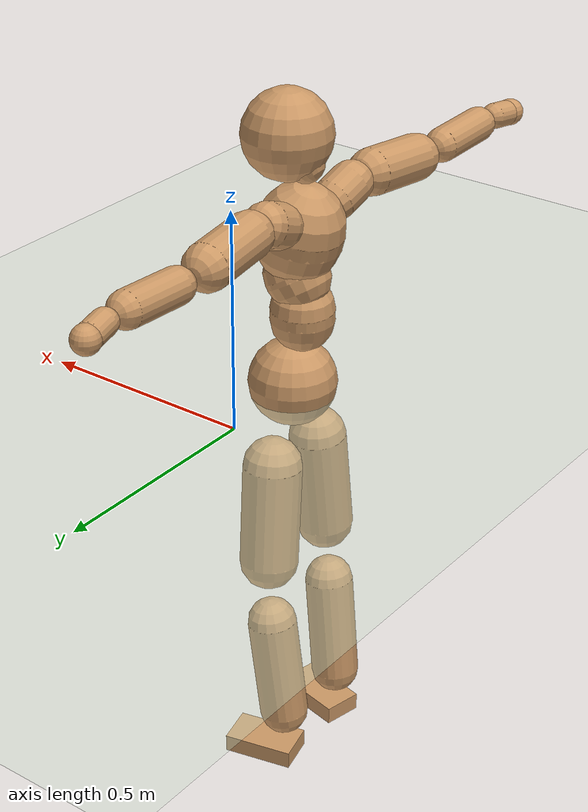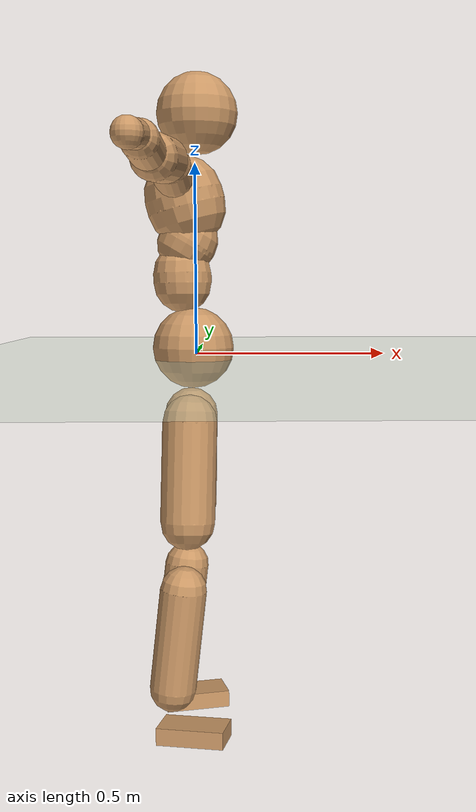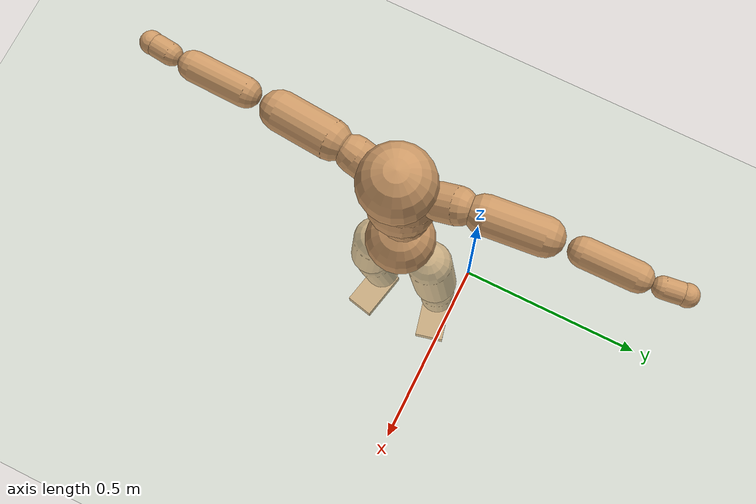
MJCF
<mujoco model="humanoid">
  <compiler coordinate="local" angle="radian"/>
  <default>
    <joint damping="0.0" armature="0.01" stiffness="0.0" limited="true"/>
    <geom conaffinity="1" condim="3" contype="7" margin="0.001" rgba="0.8 0.6 .4 1"/>
  </default>
  <asset>
    <texture type="skybox" builtin="gradient" rgb1=".4 .5 .6" rgb2="0 0 0" width="100" height="100"/>
    <texture builtin="flat" height="1278" mark="cross" markrgb="1 1 1" name="texgeom" random="0.01" rgb1="0.8 0.6 0.4" rgb2="0.8 0.6 0.4" type="cube" width="127"/>
    <texture builtin="checker" height="100" name="texplane" rgb1="0 0 0" rgb2="0.8 0.8 0.8" type="2d" width="100"/>
    <material name="MatPlane" reflectance="0.5" shininess="1" specular="1" texrepeat="60 60" texture="texplane"/>
    <material name="geom" texture="texgeom" texuniform="true"/>
  </asset>
  <worldbody>
    <light cutoff="100" diffuse="1 1 1" dir="-0 0 -1.3" directional="true" exponent="1" pos="0 0 1.3" specular=".1 .1 .1"/>
    <geom conaffinity="1" condim="3" name="floor" pos="0 0 0" rgba="0.8 0.9 0.8 1" size="100 100 .2" type="plane" material="MatPlane"/>
    <body name="Pelvis" pos="0.0006 -0.2084 0.0276">
      <freejoint name="Pelvis"/>
      <geom type="sphere" contype="1" conaffinity="1" density="500" size="0.0998" pos="0.0000 0.0000 0.0000" name="Pelvis"/>
      <body name="L_Hip" pos="-0.0085 0.08 -0.0946">
        <joint name="L_Hip_x" type="hinge" pos="0 0 0" axis="1 0 0" stiffness="800" damping="80" armature="0.02" range="-180.0000 180.0000"/>
        <joint name="L_Hip_y" type="hinge" pos="0 0 0" axis="0 1 0" stiffness="800" damping="80" armature="0.02" range="-180.0000 180.0000"/>
        <joint name="L_Hip_z" type="hinge" pos="0 0 0" axis="0 0 1" stiffness="800" damping="80" armature="0.02" range="-180.0000 180.0000"/>
        <geom type="capsule" contype="1" conaffinity="1" density="500" fromto="-0.0015 0.0067 -0.0794 -0.0062 0.0270 -0.3176" size="0.0671" name="L_Hip"/>
        <body name="L_Knee" pos="-0.0077 0.0337 -0.397">
          <joint name="L_Knee_x" type="hinge" pos="0 0 0" axis="1 0 0" stiffness="800" damping="80" armature="0.02" range="-180.0000 180.0000"/>
          <joint name="L_Knee_y" type="hinge" pos="0 0 0" axis="0 1 0" stiffness="800" damping="80" armature="0.02" range="-180.0000 180.0000"/>
          <joint name="L_Knee_z" type="hinge" pos="0 0 0" axis="0 0 1" stiffness="800" damping="80" armature="0.02" range="-180.0000 180.0000"/>
          <geom type="capsule" contype="1" conaffinity="1" density="500" fromto="-0.0100 -0.0022 -0.0831 -0.0398 -0.0089 -0.3324" size="0.0565" name="L_Knee"/>
          <body name="L_Ankle" pos="-0.0498 -0.0111 -0.4156">
            <joint name="L_Ankle_x" type="hinge" pos="0 0 0" axis="1 0 0" stiffness="800" damping="80" armature="0.02" range="-180.0000 180.0000"/>
            <joint name="L_Ankle_y" type="hinge" pos="0 0 0" axis="0 1 0" stiffness="800" damping="80" armature="0.02" range="-180.0000 180.0000"/>
            <joint name="L_Ankle_z" type="hinge" pos="0 0 0" axis="0 0 1" stiffness="800" damping="80" armature="0.02" range="-180.0000 180.0000"/>
            <geom type="box" contype="1" conaffinity="1" density="500" pos="0.0581 0.0137 -0.0290" size="0.0817 0.0475 0.0212" quat="0.9933 0.0000 0.0000 0.1152" name="L_Ankle"/>
            <body name="L_Toe" pos="0.1161 0.0273 -0.058">
              <joint name="L_Toe_x" type="hinge" pos="0 0 0" axis="1 0 0" stiffness="500" damping="50" armature="0.02" range="-180.0000 180.0000"/>
              <joint name="L_Toe_y" type="hinge" pos="0 0 0" axis="0 1 0" stiffness="500" damping="50" armature="0.02" range="-180.0000 180.0000"/>
              <joint name="L_Toe_z" type="hinge" pos="0 0 0" axis="0 0 1" stiffness="500" damping="50" armature="0.02" range="-180.0000 180.0000"/>
              <geom type="box" contype="1" conaffinity="1" density="500" pos="0.0000 0.0000 0.0293" size="0.0009 0.0023 0.0011" quat="0.9926 0.0000 0.0000 0.1213" name="L_Toe"/>
            </body>
          </body>
        </body>
      </body>
      <body name="R_Hip" pos="-0.0047 -0.0776 -0.0939">
        <joint name="R_Hip_x" type="hinge" pos="0 0 0" axis="1 0 0" stiffness="800" damping="80" armature="0.02" range="-180.0000 180.0000"/>
        <joint name="R_Hip_y" type="hinge" pos="0 0 0" axis="0 1 0" stiffness="800" damping="80" armature="0.02" range="-180.0000 180.0000"/>
        <joint name="R_Hip_z" type="hinge" pos="0 0 0" axis="0 0 1" stiffness="800" damping="80" armature="0.02" range="-180.0000 180.0000"/>
        <geom type="capsule" contype="1" conaffinity="1" density="500" fromto="-0.0020 -0.0082 -0.0810 -0.0082 -0.0327 -0.3239" size="0.0662" name="R_Hip"/>
        <body name="R_Knee" pos="-0.0102 -0.0409 -0.4049">
          <joint name="R_Knee_x" type="hinge" pos="0 0 0" axis="1 0 0" stiffness="800" damping="80" armature="0.02" range="-180.0000 180.0000"/>
          <joint name="R_Knee_y" type="hinge" pos="0 0 0" axis="0 1 0" stiffness="800" damping="80" armature="0.02" range="-180.0000 180.0000"/>
          <joint name="R_Knee_z" type="hinge" pos="0 0 0" axis="0 0 1" stiffness="800" damping="80" armature="0.02" range="-180.0000 180.0000"/>
          <geom type="capsule" contype="1" conaffinity="1" density="500" fromto="-0.0095 0.0029 -0.0835 -0.0379 0.0117 -0.3341" size="0.0567" name="R_Knee"/>
          <body name="R_Ankle" pos="-0.0474 0.0146 -0.4176">
            <joint name="R_Ankle_x" type="hinge" pos="0 0 0" axis="1 0 0" stiffness="800" damping="80" armature="0.02" range="-180.0000 180.0000"/>
            <joint name="R_Ankle_y" type="hinge" pos="0 0 0" axis="0 1 0" stiffness="800" damping="80" armature="0.02" range="-180.0000 180.0000"/>
            <joint name="R_Ankle_z" type="hinge" pos="0 0 0" axis="0 0 1" stiffness="800" damping="80" armature="0.02" range="-180.0000 180.0000"/>
            <geom type="box" contype="1" conaffinity="1" density="500" pos="0.0600 -0.0132 -0.0257" size="0.0836 0.0461 0.0215" quat="0.9942 0.0000 0.0000 -0.1080" name="R_Ankle"/>
            <body name="R_Toe" pos="0.1201 -0.0264 -0.0515">
              <joint name="R_Toe_x" type="hinge" pos="0 0 0" axis="1 0 0" stiffness="500" damping="50" armature="0.02" range="-180.0000 180.0000"/>
              <joint name="R_Toe_y" type="hinge" pos="0 0 0" axis="0 1 0" stiffness="500" damping="50" armature="0.02" range="-180.0000 180.0000"/>
              <joint name="R_Toe_z" type="hinge" pos="0 0 0" axis="0 0 1" stiffness="500" damping="50" armature="0.02" range="-180.0000 180.0000"/>
              <geom type="box" contype="1" conaffinity="1" density="500" pos="0.0000 0.0000 0.0270" size="0.0009 0.0023 0.0011" quat="0.9951 0.0000 0.0000 -0.0984" name="R_Toe"/>
            </body>
          </body>
        </body>
      </body>
      <body name="Torso" pos="-0.0237 -0.0018 0.1078">
        <joint name="Torso_x" type="hinge" pos="0 0 0" axis="1 0 0" stiffness="1000" damping="100" armature="0.02" range="-180.0000 180.0000"/>
        <joint name="Torso_y" type="hinge" pos="0 0 0" axis="0 1 0" stiffness="1000" damping="100" armature="0.02" range="-180.0000 180.0000"/>
        <joint name="Torso_z" type="hinge" pos="0 0 0" axis="0 0 1" stiffness="1000" damping="100" armature="0.02" range="-180.0000 180.0000"/>
        <geom type="capsule" contype="1" conaffinity="1" density="500" fromto="-0.0016 0.0017 0.0757 -0.0011 0.0011 0.0505" size="0.0714" name="Torso"/>
        <body name="Spine" pos="-0.0027 0.0029 0.1261">
          <joint name="Spine_x" type="hinge" pos="0 0 0" axis="1 0 0" stiffness="1000" damping="100" armature="0.02" range="-180.0000 180.0000"/>
          <joint name="Spine_y" type="hinge" pos="0 0 0" axis="0 1 0" stiffness="1000" damping="100" armature="0.02" range="-180.0000 180.0000"/>
          <joint name="Spine_z" type="hinge" pos="0 0 0" axis="0 0 1" stiffness="1000" damping="100" armature="0.02" range="-180.0000 180.0000"/>
          <geom type="capsule" contype="1" conaffinity="1" density="500" fromto="0.0176 0.0003 0.0299 0.0117 0.0002 0.0199" size="0.0721" name="Spine"/>
          <body name="Chest" pos="0.0293 0.0006 0.0498">
            <joint name="Chest_x" type="hinge" pos="0 0 0" axis="1 0 0" stiffness="1000" damping="100" armature="0.02" range="-180.0000 180.0000"/>
            <joint name="Chest_y" type="hinge" pos="0 0 0" axis="0 1 0" stiffness="1000" damping="100" armature="0.02" range="-180.0000 180.0000"/>
            <joint name="Chest_z" type="hinge" pos="0 0 0" axis="0 0 1" stiffness="1000" damping="100" armature="0.02" range="-180.0000 180.0000"/>
            <geom type="capsule" contype="1" conaffinity="1" density="500" fromto="-0.0240 -0.0010 0.0899 -0.0160 -0.0007 0.0599" size="0.0961" name="Chest"/>
            <body name="Neck" pos="-0.0446 -0.0029 0.2147">
              <joint name="Neck_x" type="hinge" pos="0 0 0" axis="1 0 0" stiffness="500" damping="50" armature="0.02" range="-180.0000 180.0000"/>
              <joint name="Neck_y" type="hinge" pos="0 0 0" axis="0 1 0" stiffness="500" damping="50" armature="0.02" range="-180.0000 180.0000"/>
              <joint name="Neck_z" type="hinge" pos="0 0 0" axis="0 0 1" stiffness="500" damping="50" armature="0.02" range="-180.0000 180.0000"/>
              <geom type="capsule" contype="1" conaffinity="1" density="500" fromto="0.0110 0.0009 0.0140 0.0441 0.0038 0.0559" size="0.0409" name="Neck"/>
              <body name="Head" pos="0.0551 0.0047 0.0699">
                <joint name="Head_x" type="hinge" pos="0 0 0" axis="1 0 0" stiffness="500" damping="50" armature="0.02" range="-180.0000 180.0000"/>
                <joint name="Head_y" type="hinge" pos="0 0 0" axis="0 1 0" stiffness="500" damping="50" armature="0.02" range="-180.0000 180.0000"/>
                <joint name="Head_z" type="hinge" pos="0 0 0" axis="0 0 1" stiffness="500" damping="50" armature="0.02" range="-180.0000 180.0000"/>
                <geom type="sphere" contype="1" conaffinity="1" density="500" size="0.0988" pos="0.0000 0.0000 0.0000" name="Head"/>
              </body>
            </body>
            <body name="L_Thorax" pos="-0.0347 0.0753 0.1182">
              <joint name="L_Thorax_x" type="hinge" pos="0 0 0" axis="1 0 0" stiffness="500" damping="50" armature="0.02" range="-180.0000 180.0000"/>
              <joint name="L_Thorax_y" type="hinge" pos="0 0 0" axis="0 1 0" stiffness="500" damping="50" armature="0.02" range="-180.0000 180.0000"/>
              <joint name="L_Thorax_z" type="hinge" pos="0 0 0" axis="0 0 1" stiffness="500" damping="50" armature="0.02" range="-180.0000 180.0000"/>
              <geom type="capsule" contype="1" conaffinity="1" density="500" fromto="-0.0017 0.0162 0.0065 -0.0069 0.0649 0.0262" size="0.0499" name="L_Thorax"/>
              <body name="L_Shoulder" pos="-0.0086 0.0811 0.0327">
                <joint name="L_Shoulder_x" type="hinge" pos="0 0 0" axis="1 0 0" stiffness="500" damping="50" armature="0.02" range="-720.0000 720.0000"/>
                <joint name="L_Shoulder_y" type="hinge" pos="0 0 0" axis="0 1 0" stiffness="500" damping="50" armature="0.02" range="-720.0000 720.0000"/>
                <joint name="L_Shoulder_z" type="hinge" pos="0 0 0" axis="0 0 1" stiffness="500" damping="50" armature="0.02" range="-720.0000 720.0000"/>
                <geom type="capsule" contype="1" conaffinity="1" density="500" fromto="-0.0055 0.0506 -0.0026 -0.0220 0.2026 -0.0106" size="0.0516" name="L_Shoulder"/>
                <body name="L_Elbow" pos="-0.0274 0.2532 -0.0132">
                  <joint name="L_Elbow_x" type="hinge" pos="0 0 0" axis="1 0 0" stiffness="500" damping="50" armature="0.02" range="-720.0000 720.0000"/>
                  <joint name="L_Elbow_y" type="hinge" pos="0 0 0" axis="0 1 0" stiffness="500" damping="50" armature="0.02" range="-720.0000 720.0000"/>
                  <joint name="L_Elbow_z" type="hinge" pos="0 0 0" axis="0 0 1" stiffness="500" damping="50" armature="0.02" range="-720.0000 720.0000"/>
                  <geom type="capsule" contype="1" conaffinity="1" density="500" fromto="-0.0001 0.0474 0.0021 -0.0002 0.1897 0.0084" size="0.0392" name="L_Elbow"/>
                  <body name="L_Wrist" pos="-0.0003 0.2371 0.0105">
                    <joint name="L_Wrist_x" type="hinge" pos="0 0 0" axis="1 0 0" stiffness="300" damping="30" armature="0.02" range="-180.0000 180.0000"/>
                    <joint name="L_Wrist_y" type="hinge" pos="0 0 0" axis="0 1 0" stiffness="300" damping="30" armature="0.02" range="-180.0000 180.0000"/>
                    <joint name="L_Wrist_z" type="hinge" pos="0 0 0" axis="0 0 1" stiffness="300" damping="30" armature="0.02" range="-180.0000 180.0000"/>
                    <geom type="capsule" contype="1" conaffinity="1" density="500" fromto="-0.0025 0.0151 -0.0019 -0.0100 0.0603 -0.0075" size="0.0287" name="L_Wrist"/>
                    <body name="L_Hand" pos="-0.0125 0.0754 -0.0093">
                      <joint name="L_Hand_x" type="hinge" pos="0 0 0" axis="1 0 0" stiffness="300" damping="30" armature="0.02" range="-180.0000 180.0000"/>
                      <joint name="L_Hand_y" type="hinge" pos="0 0 0" axis="0 1 0" stiffness="300" damping="30" armature="0.02" range="-180.0000 180.0000"/>
                      <joint name="L_Hand_z" type="hinge" pos="0 0 0" axis="0 0 1" stiffness="300" damping="30" armature="0.02" range="-180.0000 180.0000"/>
                      <geom type="sphere" contype="1" conaffinity="1" density="500" size="0.0305" pos="0.0000 0.0000 0.0000" name="L_Hand"/>
                    </body>
                  </body>
                </body>
              </body>
            </body>
            <body name="R_Thorax" pos="-0.0408 -0.0776 0.1168">
              <joint name="R_Thorax_x" type="hinge" pos="0 0 0" axis="1 0 0" stiffness="500" damping="50" armature="0.02" range="-180.0000 180.0000"/>
              <joint name="R_Thorax_y" type="hinge" pos="0 0 0" axis="0 1 0" stiffness="500" damping="50" armature="0.02" range="-180.0000 180.0000"/>
              <joint name="R_Thorax_z" type="hinge" pos="0 0 0" axis="0 0 1" stiffness="500" damping="50" armature="0.02" range="-180.0000 180.0000"/>
              <geom type="capsule" contype="1" conaffinity="1" density="500" fromto="-0.0018 -0.0168 0.0071 -0.0073 -0.0673 0.0285" size="0.0488" name="R_Thorax"/>
              <body name="R_Shoulder" pos="-0.0092 -0.0841 0.0356">
                <joint name="R_Shoulder_x" type="hinge" pos="0 0 0" axis="1 0 0" stiffness="500" damping="50" armature="0.02" range="-720.0000 720.0000"/>
                <joint name="R_Shoulder_y" type="hinge" pos="0 0 0" axis="0 1 0" stiffness="500" damping="50" armature="0.02" range="-720.0000 720.0000"/>
                <joint name="R_Shoulder_z" type="hinge" pos="0 0 0" axis="0 0 1" stiffness="500" damping="50" armature="0.02" range="-720.0000 720.0000"/>
                <geom type="capsule" contype="1" conaffinity="1" density="500" fromto="-0.0048 -0.0495 -0.0031 -0.0191 -0.1982 -0.0125" size="0.0529" name="R_Shoulder"/>
                <body name="R_Elbow" pos="-0.0239 -0.2477 -0.0156">
                  <joint name="R_Elbow_x" type="hinge" pos="0 0 0" axis="1 0 0" stiffness="500" damping="50" armature="0.02" range="-720.0000 720.0000"/>
                  <joint name="R_Elbow_y" type="hinge" pos="0 0 0" axis="0 1 0" stiffness="500" damping="50" armature="0.02" range="-720.0000 720.0000"/>
                  <joint name="R_Elbow_z" type="hinge" pos="0 0 0" axis="0 0 1" stiffness="500" damping="50" armature="0.02" range="-720.0000 720.0000"/>
                  <geom type="capsule" contype="1" conaffinity="1" density="500" fromto="-0.0008 -0.0493 0.0019 -0.0033 -0.1973 0.0076" size="0.0396" name="R_Elbow"/>
                  <body name="R_Wrist" pos="-0.0041 -0.2467 0.0095">
                    <joint name="R_Wrist_x" type="hinge" pos="0 0 0" axis="1 0 0" stiffness="300" damping="30" armature="0.02" range="-180.0000 180.0000"/>
                    <joint name="R_Wrist_y" type="hinge" pos="0 0 0" axis="0 1 0" stiffness="300" damping="30" armature="0.02" range="-180.0000 180.0000"/>
                    <joint name="R_Wrist_z" type="hinge" pos="0 0 0" axis="0 0 1" stiffness="300" damping="30" armature="0.02" range="-180.0000 180.0000"/>
                    <geom type="capsule" contype="1" conaffinity="1" density="500" fromto="-0.0020 -0.0152 -0.0014 -0.0079 -0.0610 -0.0056" size="0.0296" name="R_Wrist"/>
                    <body name="R_Hand" pos="-0.0099 -0.0762 -0.007">
                      <joint name="R_Hand_x" type="hinge" pos="0 0 0" axis="1 0 0" stiffness="300" damping="30" armature="0.02" range="-180.0000 180.0000"/>
                      <joint name="R_Hand_y" type="hinge" pos="0 0 0" axis="0 1 0" stiffness="300" damping="30" armature="0.02" range="-180.0000 180.0000"/>
                      <joint name="R_Hand_z" type="hinge" pos="0 0 0" axis="0 0 1" stiffness="300" damping="30" armature="0.02" range="-180.0000 180.0000"/>
                      <geom type="sphere" contype="1" conaffinity="1" density="500" size="0.0308" pos="0.0000 0.0000 0.0000" name="R_Hand"/>
                    </body>
                  </body>
                </body>
              </body>
            </body>
          </body>
        </body>
      </body>
    </body>
  </worldbody>
  <actuator>
    <motor name="L_Hip_x" joint="L_Hip_x" gear="500"/>
    <motor name="L_Hip_y" joint="L_Hip_y" gear="500"/>
    <motor name="L_Hip_z" joint="L_Hip_z" gear="500"/>
    <motor name="L_Knee_x" joint="L_Knee_x" gear="500"/>
    <motor name="L_Knee_y" joint="L_Knee_y" gear="500"/>
    <motor name="L_Knee_z" joint="L_Knee_z" gear="500"/>
    <motor name="L_Ankle_x" joint="L_Ankle_x" gear="500"/>
    <motor name="L_Ankle_y" joint="L_Ankle_y" gear="500"/>
    <motor name="L_Ankle_z" joint="L_Ankle_z" gear="500"/>
    <motor name="L_Toe_x" joint="L_Toe_x" gear="500"/>
    <motor name="L_Toe_y" joint="L_Toe_y" gear="500"/>
    <motor name="L_Toe_z" joint="L_Toe_z" gear="500"/>
    <motor name="R_Hip_x" joint="R_Hip_x" gear="500"/>
    <motor name="R_Hip_y" joint="R_Hip_y" gear="500"/>
    <motor name="R_Hip_z" joint="R_Hip_z" gear="500"/>
    <motor name="R_Knee_x" joint="R_Knee_x" gear="500"/>
    <motor name="R_Knee_y" joint="R_Knee_y" gear="500"/>
    <motor name="R_Knee_z" joint="R_Knee_z" gear="500"/>
    <motor name="R_Ankle_x" joint="R_Ankle_x" gear="500"/>
    <motor name="R_Ankle_y" joint="R_Ankle_y" gear="500"/>
    <motor name="R_Ankle_z" joint="R_Ankle_z" gear="500"/>
    <motor name="R_Toe_x" joint="R_Toe_x" gear="500"/>
    <motor name="R_Toe_y" joint="R_Toe_y" gear="500"/>
    <motor name="R_Toe_z" joint="R_Toe_z" gear="500"/>
    <motor name="Torso_x" joint="Torso_x" gear="500"/>
    <motor name="Torso_y" joint="Torso_y" gear="500"/>
    <motor name="Torso_z" joint="Torso_z" gear="500"/>
    <motor name="Spine_x" joint="Spine_x" gear="500"/>
    <motor name="Spine_y" joint="Spine_y" gear="500"/>
    <motor name="Spine_z" joint="Spine_z" gear="500"/>
    <motor name="Chest_x" joint="Chest_x" gear="500"/>
    <motor name="Chest_y" joint="Chest_y" gear="500"/>
    <motor name="Chest_z" joint="Chest_z" gear="500"/>
    <motor name="Neck_x" joint="Neck_x" gear="500"/>
    <motor name="Neck_y" joint="Neck_y" gear="500"/>
    <motor name="Neck_z" joint="Neck_z" gear="500"/>
    <motor name="Head_x" joint="Head_x" gear="500"/>
    <motor name="Head_y" joint="Head_y" gear="500"/>
    <motor name="Head_z" joint="Head_z" gear="500"/>
    <motor name="L_Thorax_x" joint="L_Thorax_x" gear="500"/>
    <motor name="L_Thorax_y" joint="L_Thorax_y" gear="500"/>
    <motor name="L_Thorax_z" joint="L_Thorax_z" gear="500"/>
    <motor name="L_Shoulder_x" joint="L_Shoulder_x" gear="500"/>
    <motor name="L_Shoulder_y" joint="L_Shoulder_y" gear="500"/>
    <motor name="L_Shoulder_z" joint="L_Shoulder_z" gear="500"/>
    <motor name="L_Elbow_x" joint="L_Elbow_x" gear="500"/>
    <motor name="L_Elbow_y" joint="L_Elbow_y" gear="500"/>
    <motor name="L_Elbow_z" joint="L_Elbow_z" gear="500"/>
    <motor name="L_Wrist_x" joint="L_Wrist_x" gear="500"/>
    <motor name="L_Wrist_y" joint="L_Wrist_y" gear="500"/>
    <motor name="L_Wrist_z" joint="L_Wrist_z" gear="500"/>
    <motor name="L_Hand_x" joint="L_Hand_x" gear="500"/>
    <motor name="L_Hand_y" joint="L_Hand_y" gear="500"/>
    <motor name="L_Hand_z" joint="L_Hand_z" gear="500"/>
    <motor name="R_Thorax_x" joint="R_Thorax_x" gear="500"/>
    <motor name="R_Thorax_y" joint="R_Thorax_y" gear="500"/>
    <motor name="R_Thorax_z" joint="R_Thorax_z" gear="500"/>
    <motor name="R_Shoulder_x" joint="R_Shoulder_x" gear="500"/>
    <motor name="R_Shoulder_y" joint="R_Shoulder_y" gear="500"/>
    <motor name="R_Shoulder_z" joint="R_Shoulder_z" gear="500"/>
    <motor name="R_Elbow_x" joint="R_Elbow_x" gear="500"/>
    <motor name="R_Elbow_y" joint="R_Elbow_y" gear="500"/>
    <motor name="R_Elbow_z" joint="R_Elbow_z" gear="500"/>
    <motor name="R_Wrist_x" joint="R_Wrist_x" gear="500"/>
    <motor name="R_Wrist_y" joint="R_Wrist_y" gear="500"/>
    <motor name="R_Wrist_z" joint="R_Wrist_z" gear="500"/>
    <motor name="R_Hand_x" joint="R_Hand_x" gear="500"/>
    <motor name="R_Hand_y" joint="R_Hand_y" gear="500"/>
    <motor name="R_Hand_z" joint="R_Hand_z" gear="500"/>
  </actuator>
  <contact>
    <exclude body1="Torso" body2="Chest"/>
    <exclude body1="Head" body2="Chest"/>
    <exclude body1="R_Knee" body2="R_Toe"/>
    <exclude body1="R_Knee" body2="L_Ankle"/>
    <exclude body1="R_Knee" body2="L_Toe"/>
    <exclude body1="L_Knee" body2="L_Toe"/>
    <exclude body1="L_Knee" body2="R_Ankle"/>
    <exclude body1="L_Knee" body2="R_Toe"/>
    <exclude body1="L_Shoulder" body2="Chest"/>
    <exclude body1="R_Shoulder" body2="Chest"/>
  </contact>
  <sensor/>
  <size njmax="700" nconmax="700"/>
</mujoco>
